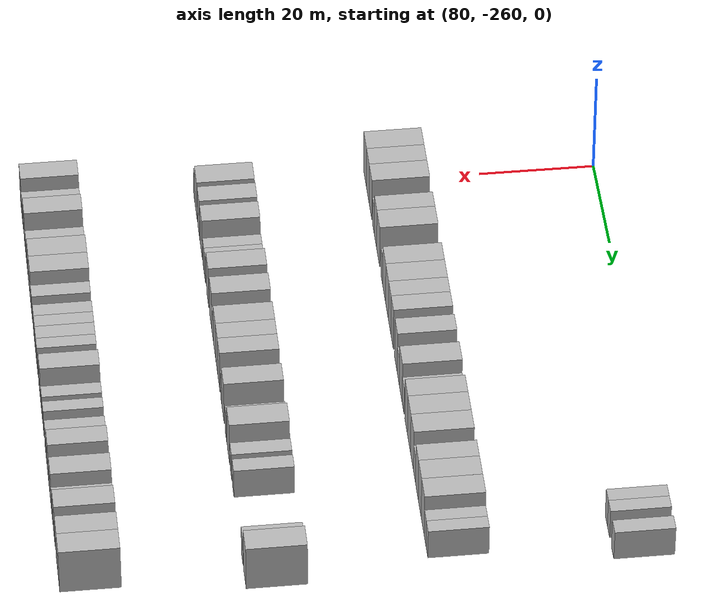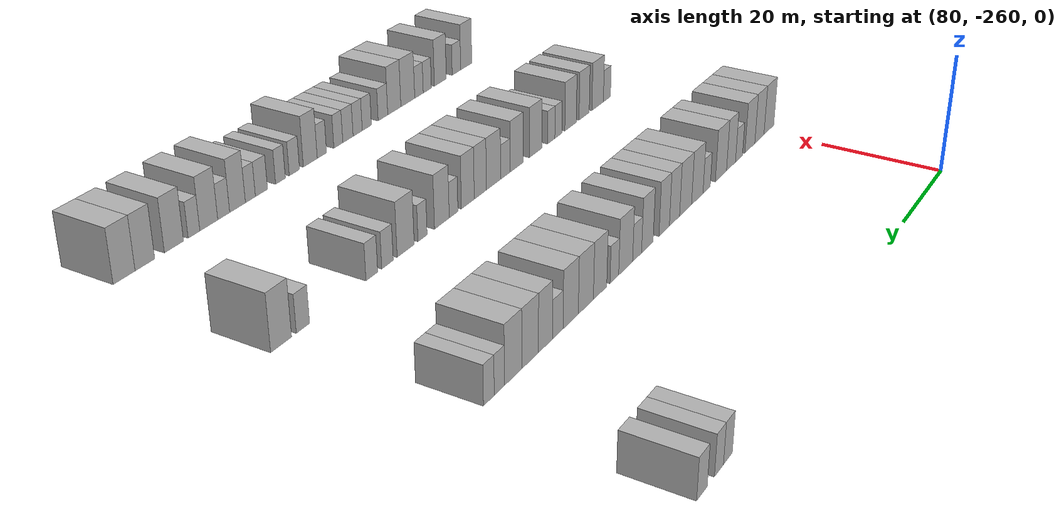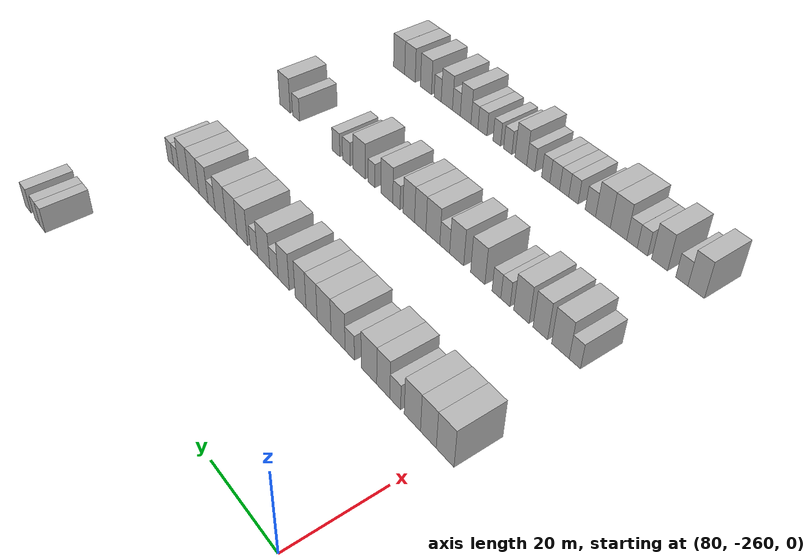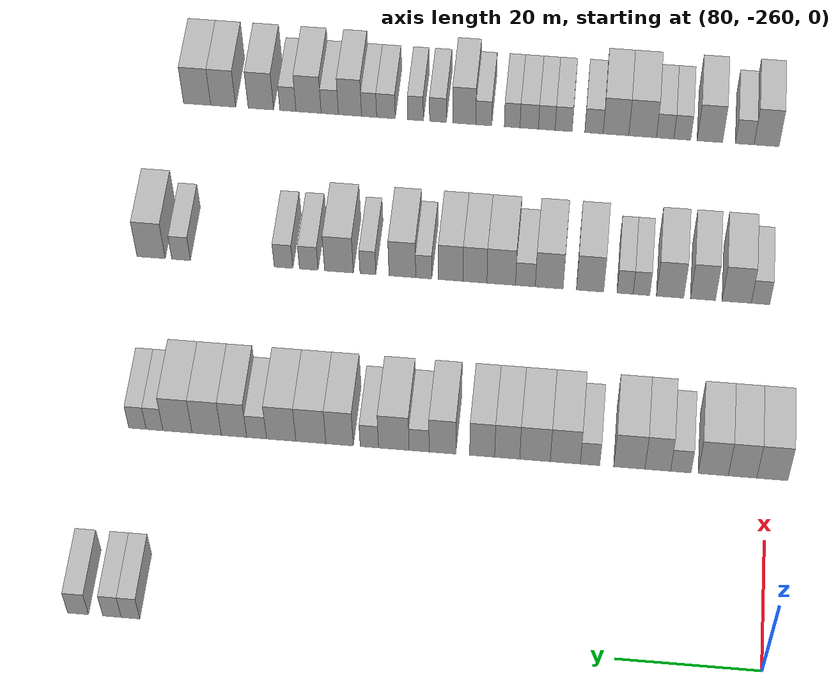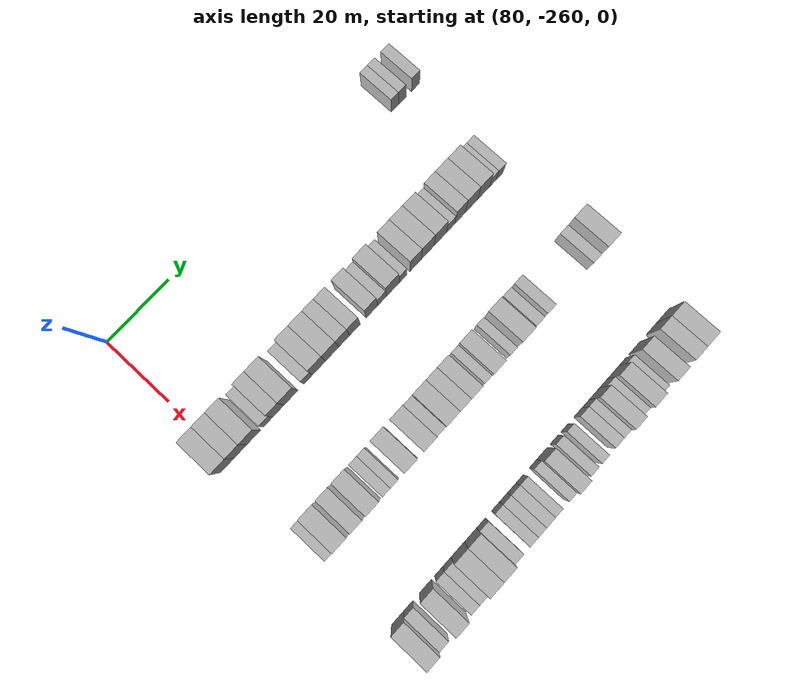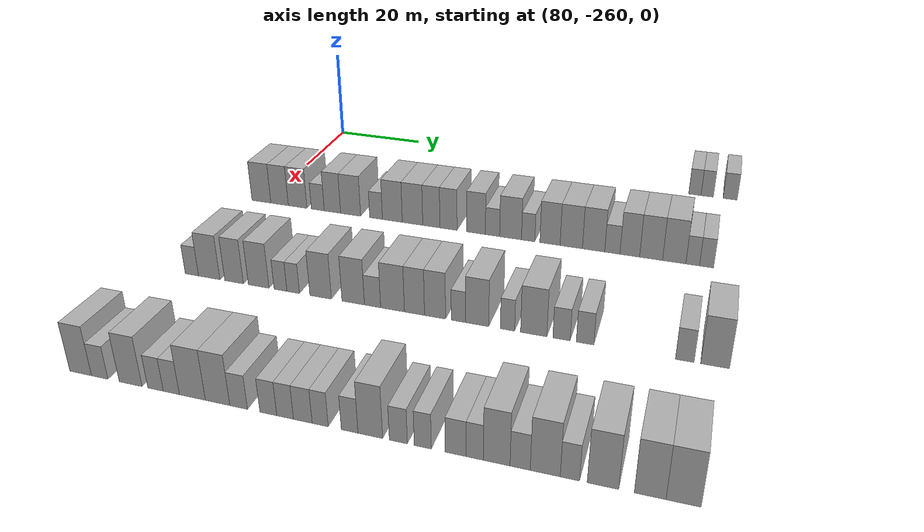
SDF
<sdf version="1.6">
 <world name="default">
  <model name="building_527">
   <static>1</static>
   <pose>85.0000 -173.3232 0 0.000000 0.000000 0.000000</pose>
   <link name="link">
    <pose>0 0 3.00 0 0 0</pose>
    <collision name="collision"><geometry><box><size>10.0000 2.5828 6.0000</size></box></geometry></collision>
    <visual name="visual">
     <cast_shadows>0</cast_shadows>
     <geometry><box><size>10.0000 2.5828 6.0000</size></box></geometry>
     <material>
      <script>
       <uri>model://HANNAS_wall/materials/scripts</uri>
       <uri>model://HANNAS_wall/materials/textures</uri>
       <name>vrc/HANNAS_wall</name>
      </script>
     </material>
    </visual>
   </link>
  </model>
  <model name="building_528">
   <static>1</static>
   <pose>85.0000 -170.7435 0 0.000000 0.000000 0.000000</pose>
   <link name="link">
    <pose>0 0 3.00 0 0 0</pose>
    <collision name="collision"><geometry><box><size>10.0000 2.5765 6.0000</size></box></geometry></collision>
    <visual name="visual">
     <cast_shadows>0</cast_shadows>
     <geometry><box><size>10.0000 2.5765 6.0000</size></box></geometry>
     <material>
      <script>
       <uri>model://HANNAS_wall/materials/scripts</uri>
       <uri>model://HANNAS_wall/materials/textures</uri>
       <name>vrc/HANNAS_wall</name>
      </script>
     </material>
    </visual>
   </link>
  </model>
  <model name="building_529">
   <static>1</static>
   <pose>85.0000 -166.0036 0 0.000000 0.000000 0.000000</pose>
   <link name="link">
    <pose>0 0 3.00 0 0 0</pose>
    <collision name="collision"><geometry><box><size>10.0000 2.9033 6.0000</size></box></geometry></collision>
    <visual name="visual">
     <cast_shadows>0</cast_shadows>
     <geometry><box><size>10.0000 2.9033 6.0000</size></box></geometry>
     <material>
      <script>
       <uri>model://HANNAS_wall/materials/scripts</uri>
       <uri>model://HANNAS_wall/materials/textures</uri>
       <name>vrc/HANNAS_wall</name>
      </script>
     </material>
    </visual>
   </link>
  </model>
  <model name="building_744">
   <static>1</static>
   <pose>115.0000 -260.9342 0 0.000000 0.000000 0.000000</pose>
   <link name="link">
    <pose>0 0 4.50 0 0 0</pose>
    <collision name="collision"><geometry><box><size>10.0000 4.4336 9.0000</size></box></geometry></collision>
    <visual name="visual">
     <cast_shadows>0</cast_shadows>
     <geometry><box><size>10.0000 4.4336 9.0000</size></box></geometry>
     <material>
      <script>
       <uri>model://HANNAS_wall/materials/scripts</uri>
       <uri>model://HANNAS_wall/materials/textures</uri>
       <name>vrc/HANNAS_wall</name>
      </script>
     </material>
    </visual>
   </link>
  </model>
  <model name="building_745">
   <static>1</static>
   <pose>115.0000 -256.6846 0 0.000000 0.000000 0.000000</pose>
   <link name="link">
    <pose>0 0 4.50 0 0 0</pose>
    <collision name="collision"><geometry><box><size>10.0000 4.0654 9.0000</size></box></geometry></collision>
    <visual name="visual">
     <cast_shadows>0</cast_shadows>
     <geometry><box><size>10.0000 4.0654 9.0000</size></box></geometry>
     <material>
      <script>
       <uri>model://HANNAS_wall/materials/scripts</uri>
       <uri>model://HANNAS_wall/materials/textures</uri>
       <name>vrc/HANNAS_wall</name>
      </script>
     </material>
    </visual>
   </link>
  </model>
  <model name="building_746">
   <static>1</static>
   <pose>115.0000 -252.4986 0 0.000000 0.000000 0.000000</pose>
   <link name="link">
    <pose>0 0 4.50 0 0 0</pose>
    <collision name="collision"><geometry><box><size>10.0000 4.3067 9.0000</size></box></geometry></collision>
    <visual name="visual">
     <cast_shadows>0</cast_shadows>
     <geometry><box><size>10.0000 4.3067 9.0000</size></box></geometry>
     <material>
      <script>
       <uri>model://HANNAS_wall/materials/scripts</uri>
       <uri>model://HANNAS_wall/materials/textures</uri>
       <name>vrc/HANNAS_wall</name>
      </script>
     </material>
    </visual>
   </link>
  </model>
  <model name="building_747">
   <static>1</static>
   <pose>115.0000 -247.8755 0 0.000000 0.000000 0.000000</pose>
   <link name="link">
    <pose>0 0 3.00 0 0 0</pose>
    <collision name="collision"><geometry><box><size>10.0000 2.9395 6.0000</size></box></geometry></collision>
    <visual name="visual">
     <cast_shadows>0</cast_shadows>
     <geometry><box><size>10.0000 2.9395 6.0000</size></box></geometry>
     <material>
      <script>
       <uri>model://HANNAS_wall/materials/scripts</uri>
       <uri>model://HANNAS_wall/materials/textures</uri>
       <name>vrc/HANNAS_wall</name>
      </script>
     </material>
    </visual>
   </link>
  </model>
  <model name="building_748">
   <static>1</static>
   <pose>115.0000 -244.5666 0 0.000000 0.000000 0.000000</pose>
   <link name="link">
    <pose>0 0 4.50 0 0 0</pose>
    <collision name="collision"><geometry><box><size>10.0000 3.6782 9.0000</size></box></geometry></collision>
    <visual name="visual">
     <cast_shadows>0</cast_shadows>
     <geometry><box><size>10.0000 3.6782 9.0000</size></box></geometry>
     <material>
      <script>
       <uri>model://HANNAS_wall/materials/scripts</uri>
       <uri>model://HANNAS_wall/materials/textures</uri>
       <name>vrc/HANNAS_wall</name>
      </script>
     </material>
    </visual>
   </link>
  </model>
  <model name="building_749">
   <static>1</static>
   <pose>115.0000 -240.4928 0 0.000000 0.000000 0.000000</pose>
   <link name="link">
    <pose>0 0 4.50 0 0 0</pose>
    <collision name="collision"><geometry><box><size>10.0000 4.4694 9.0000</size></box></geometry></collision>
    <visual name="visual">
     <cast_shadows>0</cast_shadows>
     <geometry><box><size>10.0000 4.4694 9.0000</size></box></geometry>
     <material>
      <script>
       <uri>model://HANNAS_wall/materials/scripts</uri>
       <uri>model://HANNAS_wall/materials/textures</uri>
       <name>vrc/HANNAS_wall</name>
      </script>
     </material>
    </visual>
   </link>
  </model>
  <model name="building_750">
   <static>1</static>
   <pose>115.0000 -234.8564 0 0.000000 0.000000 0.000000</pose>
   <link name="link">
    <pose>0 0 3.00 0 0 0</pose>
    <collision name="collision"><geometry><box><size>10.0000 2.8035 6.0000</size></box></geometry></collision>
    <visual name="visual">
     <cast_shadows>0</cast_shadows>
     <geometry><box><size>10.0000 2.8035 6.0000</size></box></geometry>
     <material>
      <script>
       <uri>model://HANNAS_wall/materials/scripts</uri>
       <uri>model://HANNAS_wall/materials/textures</uri>
       <name>vrc/HANNAS_wall</name>
      </script>
     </material>
    </visual>
   </link>
  </model>
  <model name="building_751">
   <static>1</static>
   <pose>115.0000 -231.3043 0 0.000000 0.000000 0.000000</pose>
   <link name="link">
    <pose>0 0 4.50 0 0 0</pose>
    <collision name="collision"><geometry><box><size>10.0000 4.3008 9.0000</size></box></geometry></collision>
    <visual name="visual">
     <cast_shadows>0</cast_shadows>
     <geometry><box><size>10.0000 4.3008 9.0000</size></box></geometry>
     <material>
      <script>
       <uri>model://HANNAS_wall/materials/scripts</uri>
       <uri>model://HANNAS_wall/materials/textures</uri>
       <name>vrc/HANNAS_wall</name>
      </script>
     </material>
    </visual>
   </link>
  </model>
  <model name="building_752">
   <static>1</static>
   <pose>115.0000 -226.9619 0 0.000000 0.000000 0.000000</pose>
   <link name="link">
    <pose>0 0 4.50 0 0 0</pose>
    <collision name="collision"><geometry><box><size>10.0000 4.3840 9.0000</size></box></geometry></collision>
    <visual name="visual">
     <cast_shadows>0</cast_shadows>
     <geometry><box><size>10.0000 4.3840 9.0000</size></box></geometry>
     <material>
      <script>
       <uri>model://HANNAS_wall/materials/scripts</uri>
       <uri>model://HANNAS_wall/materials/textures</uri>
       <name>vrc/HANNAS_wall</name>
      </script>
     </material>
    </visual>
   </link>
  </model>
  <model name="building_753">
   <static>1</static>
   <pose>115.0000 -222.9598 0 0.000000 0.000000 0.000000</pose>
   <link name="link">
    <pose>0 0 4.50 0 0 0</pose>
    <collision name="collision"><geometry><box><size>10.0000 3.6204 9.0000</size></box></geometry></collision>
    <visual name="visual">
     <cast_shadows>0</cast_shadows>
     <geometry><box><size>10.0000 3.6204 9.0000</size></box></geometry>
     <material>
      <script>
       <uri>model://HANNAS_wall/materials/scripts</uri>
       <uri>model://HANNAS_wall/materials/textures</uri>
       <name>vrc/HANNAS_wall</name>
      </script>
     </material>
    </visual>
   </link>
  </model>
  <model name="building_754">
   <static>1</static>
   <pose>115.0000 -219.3488 0 0.000000 0.000000 0.000000</pose>
   <link name="link">
    <pose>0 0 4.50 0 0 0</pose>
    <collision name="collision"><geometry><box><size>10.0000 3.6015 9.0000</size></box></geometry></collision>
    <visual name="visual">
     <cast_shadows>0</cast_shadows>
     <geometry><box><size>10.0000 3.6015 9.0000</size></box></geometry>
     <material>
      <script>
       <uri>model://HANNAS_wall/materials/scripts</uri>
       <uri>model://HANNAS_wall/materials/textures</uri>
       <name>vrc/HANNAS_wall</name>
      </script>
     </material>
    </visual>
   </link>
  </model>
  <model name="building_755">
   <static>1</static>
   <pose>115.0000 -213.6214 0 0.000000 0.000000 0.000000</pose>
   <link name="link">
    <pose>0 0 4.50 0 0 0</pose>
    <collision name="collision"><geometry><box><size>10.0000 3.8534 9.0000</size></box></geometry></collision>
    <visual name="visual">
     <cast_shadows>0</cast_shadows>
     <geometry><box><size>10.0000 3.8534 9.0000</size></box></geometry>
     <material>
      <script>
       <uri>model://HANNAS_wall/materials/scripts</uri>
       <uri>model://HANNAS_wall/materials/textures</uri>
       <name>vrc/HANNAS_wall</name>
      </script>
     </material>
    </visual>
   </link>
  </model>
  <model name="building_756">
   <static>1</static>
   <pose>115.0000 -210.2442 0 0.000000 0.000000 0.000000</pose>
   <link name="link">
    <pose>0 0 3.00 0 0 0</pose>
    <collision name="collision"><geometry><box><size>10.0000 2.9009 6.0000</size></box></geometry></collision>
    <visual name="visual">
     <cast_shadows>0</cast_shadows>
     <geometry><box><size>10.0000 2.9009 6.0000</size></box></geometry>
     <material>
      <script>
       <uri>model://HANNAS_wall/materials/scripts</uri>
       <uri>model://HANNAS_wall/materials/textures</uri>
       <name>vrc/HANNAS_wall</name>
      </script>
     </material>
    </visual>
   </link>
  </model>
  <model name="building_757">
   <static>1</static>
   <pose>115.0000 -206.5871 0 0.000000 0.000000 0.000000</pose>
   <link name="link">
    <pose>0 0 4.50 0 0 0</pose>
    <collision name="collision"><geometry><box><size>10.0000 4.4133 9.0000</size></box></geometry></collision>
    <visual name="visual">
     <cast_shadows>0</cast_shadows>
     <geometry><box><size>10.0000 4.4133 9.0000</size></box></geometry>
     <material>
      <script>
       <uri>model://HANNAS_wall/materials/scripts</uri>
       <uri>model://HANNAS_wall/materials/textures</uri>
       <name>vrc/HANNAS_wall</name>
      </script>
     </material>
    </visual>
   </link>
  </model>
  <model name="building_758">
   <static>1</static>
   <pose>115.0000 -203.0496 0 0.000000 0.000000 0.000000</pose>
   <link name="link">
    <pose>0 0 3.00 0 0 0</pose>
    <collision name="collision"><geometry><box><size>10.0000 2.6618 6.0000</size></box></geometry></collision>
    <visual name="visual">
     <cast_shadows>0</cast_shadows>
     <geometry><box><size>10.0000 2.6618 6.0000</size></box></geometry>
     <material>
      <script>
       <uri>model://HANNAS_wall/materials/scripts</uri>
       <uri>model://HANNAS_wall/materials/textures</uri>
       <name>vrc/HANNAS_wall</name>
      </script>
     </material>
    </visual>
   </link>
  </model>
  <model name="building_759">
   <static>1</static>
   <pose>115.0000 -198.7320 0 0.000000 0.000000 0.000000</pose>
   <link name="link">
    <pose>0 0 4.50 0 0 0</pose>
    <collision name="collision"><geometry><box><size>10.0000 3.9734 9.0000</size></box></geometry></collision>
    <visual name="visual">
     <cast_shadows>0</cast_shadows>
     <geometry><box><size>10.0000 3.9734 9.0000</size></box></geometry>
     <material>
      <script>
       <uri>model://HANNAS_wall/materials/scripts</uri>
       <uri>model://HANNAS_wall/materials/textures</uri>
       <name>vrc/HANNAS_wall</name>
      </script>
     </material>
    </visual>
   </link>
  </model>
  <model name="building_760">
   <static>1</static>
   <pose>115.0000 -194.5680 0 0.000000 0.000000 0.000000</pose>
   <link name="link">
    <pose>0 0 4.50 0 0 0</pose>
    <collision name="collision"><geometry><box><size>10.0000 4.3548 9.0000</size></box></geometry></collision>
    <visual name="visual">
     <cast_shadows>0</cast_shadows>
     <geometry><box><size>10.0000 4.3548 9.0000</size></box></geometry>
     <material>
      <script>
       <uri>model://HANNAS_wall/materials/scripts</uri>
       <uri>model://HANNAS_wall/materials/textures</uri>
       <name>vrc/HANNAS_wall</name>
      </script>
     </material>
    </visual>
   </link>
  </model>
  <model name="building_761">
   <static>1</static>
   <pose>115.0000 -190.2521 0 0.000000 0.000000 0.000000</pose>
   <link name="link">
    <pose>0 0 4.50 0 0 0</pose>
    <collision name="collision"><geometry><box><size>10.0000 4.2768 9.0000</size></box></geometry></collision>
    <visual name="visual">
     <cast_shadows>0</cast_shadows>
     <geometry><box><size>10.0000 4.2768 9.0000</size></box></geometry>
     <material>
      <script>
       <uri>model://HANNAS_wall/materials/scripts</uri>
       <uri>model://HANNAS_wall/materials/textures</uri>
       <name>vrc/HANNAS_wall</name>
      </script>
     </material>
    </visual>
   </link>
  </model>
  <model name="building_762">
   <static>1</static>
   <pose>115.0000 -186.6690 0 0.000000 0.000000 0.000000</pose>
   <link name="link">
    <pose>0 0 3.00 0 0 0</pose>
    <collision name="collision"><geometry><box><size>10.0000 2.8894 6.0000</size></box></geometry></collision>
    <visual name="visual">
     <cast_shadows>0</cast_shadows>
     <geometry><box><size>10.0000 2.8894 6.0000</size></box></geometry>
     <material>
      <script>
       <uri>model://HANNAS_wall/materials/scripts</uri>
       <uri>model://HANNAS_wall/materials/textures</uri>
       <name>vrc/HANNAS_wall</name>
      </script>
     </material>
    </visual>
   </link>
  </model>
  <model name="building_763">
   <static>1</static>
   <pose>115.0000 -183.3742 0 0.000000 0.000000 0.000000</pose>
   <link name="link">
    <pose>0 0 4.50 0 0 0</pose>
    <collision name="collision"><geometry><box><size>10.0000 3.7001 9.0000</size></box></geometry></collision>
    <visual name="visual">
     <cast_shadows>0</cast_shadows>
     <geometry><box><size>10.0000 3.7001 9.0000</size></box></geometry>
     <material>
      <script>
       <uri>model://HANNAS_wall/materials/scripts</uri>
       <uri>model://HANNAS_wall/materials/textures</uri>
       <name>vrc/HANNAS_wall</name>
      </script>
     </material>
    </visual>
   </link>
  </model>
  <model name="building_764">
   <static>1</static>
   <pose>115.0000 -179.3945 0 0.000000 0.000000 0.000000</pose>
   <link name="link">
    <pose>0 0 4.50 0 0 0</pose>
    <collision name="collision"><geometry><box><size>10.0000 4.2594 9.0000</size></box></geometry></collision>
    <visual name="visual">
     <cast_shadows>0</cast_shadows>
     <geometry><box><size>10.0000 4.2594 9.0000</size></box></geometry>
     <material>
      <script>
       <uri>model://HANNAS_wall/materials/scripts</uri>
       <uri>model://HANNAS_wall/materials/textures</uri>
       <name>vrc/HANNAS_wall</name>
      </script>
     </material>
    </visual>
   </link>
  </model>
  <model name="building_765">
   <static>1</static>
   <pose>115.0000 -175.1311 0 0.000000 0.000000 0.000000</pose>
   <link name="link">
    <pose>0 0 4.50 0 0 0</pose>
    <collision name="collision"><geometry><box><size>10.0000 4.2675 9.0000</size></box></geometry></collision>
    <visual name="visual">
     <cast_shadows>0</cast_shadows>
     <geometry><box><size>10.0000 4.2675 9.0000</size></box></geometry>
     <material>
      <script>
       <uri>model://HANNAS_wall/materials/scripts</uri>
       <uri>model://HANNAS_wall/materials/textures</uri>
       <name>vrc/HANNAS_wall</name>
      </script>
     </material>
    </visual>
   </link>
  </model>
  <model name="building_766">
   <static>1</static>
   <pose>115.0000 -171.7647 0 0.000000 0.000000 0.000000</pose>
   <link name="link">
    <pose>0 0 3.00 0 0 0</pose>
    <collision name="collision"><geometry><box><size>10.0000 2.4652 6.0000</size></box></geometry></collision>
    <visual name="visual">
     <cast_shadows>0</cast_shadows>
     <geometry><box><size>10.0000 2.4652 6.0000</size></box></geometry>
     <material>
      <script>
       <uri>model://HANNAS_wall/materials/scripts</uri>
       <uri>model://HANNAS_wall/materials/textures</uri>
       <name>vrc/HANNAS_wall</name>
      </script>
     </material>
    </visual>
   </link>
  </model>
  <model name="building_767">
   <static>1</static>
   <pose>115.0000 -169.2612 0 0.000000 0.000000 0.000000</pose>
   <link name="link">
    <pose>0 0 3.00 0 0 0</pose>
    <collision name="collision"><geometry><box><size>10.0000 2.5419 6.0000</size></box></geometry></collision>
    <visual name="visual">
     <cast_shadows>0</cast_shadows>
     <geometry><box><size>10.0000 2.5419 6.0000</size></box></geometry>
     <material>
      <script>
       <uri>model://HANNAS_wall/materials/scripts</uri>
       <uri>model://HANNAS_wall/materials/textures</uri>
       <name>vrc/HANNAS_wall</name>
      </script>
     </material>
    </visual>
   </link>
  </model>
  <model name="building_971">
   <static>1</static>
   <pose>145.0000 -258.7184 0 0.000000 0.000000 0.000000</pose>
   <link name="link">
    <pose>0 0 3.00 0 0 0</pose>
    <collision name="collision"><geometry><box><size>10.0000 2.7501 6.0000</size></box></geometry></collision>
    <visual name="visual">
     <cast_shadows>0</cast_shadows>
     <geometry><box><size>10.0000 2.7501 6.0000</size></box></geometry>
     <material>
      <script>
       <uri>model://HANNAS_wall/materials/scripts</uri>
       <uri>model://HANNAS_wall/materials/textures</uri>
       <name>vrc/HANNAS_wall</name>
      </script>
     </material>
    </visual>
   </link>
  </model>
  <model name="building_972">
   <static>1</static>
   <pose>145.0000 -255.1526 0 0.000000 0.000000 0.000000</pose>
   <link name="link">
    <pose>0 0 4.50 0 0 0</pose>
    <collision name="collision"><geometry><box><size>10.0000 4.3815 9.0000</size></box></geometry></collision>
    <visual name="visual">
     <cast_shadows>0</cast_shadows>
     <geometry><box><size>10.0000 4.3815 9.0000</size></box></geometry>
     <material>
      <script>
       <uri>model://HANNAS_wall/materials/scripts</uri>
       <uri>model://HANNAS_wall/materials/textures</uri>
       <name>vrc/HANNAS_wall</name>
      </script>
     </material>
    </visual>
   </link>
  </model>
  <model name="building_973">
   <static>1</static>
   <pose>145.0000 -250.0855 0 0.000000 0.000000 0.000000</pose>
   <link name="link">
    <pose>0 0 4.50 0 0 0</pose>
    <collision name="collision"><geometry><box><size>10.0000 3.7528 9.0000</size></box></geometry></collision>
    <visual name="visual">
     <cast_shadows>0</cast_shadows>
     <geometry><box><size>10.0000 3.7528 9.0000</size></box></geometry>
     <material>
      <script>
       <uri>model://HANNAS_wall/materials/scripts</uri>
       <uri>model://HANNAS_wall/materials/textures</uri>
       <name>vrc/HANNAS_wall</name>
      </script>
     </material>
    </visual>
   </link>
  </model>
  <model name="building_974">
   <static>1</static>
   <pose>145.0000 -245.1570 0 0.000000 0.000000 0.000000</pose>
   <link name="link">
    <pose>0 0 4.50 0 0 0</pose>
    <collision name="collision"><geometry><box><size>10.0000 4.1041 9.0000</size></box></geometry></collision>
    <visual name="visual">
     <cast_shadows>0</cast_shadows>
     <geometry><box><size>10.0000 4.1041 9.0000</size></box></geometry>
     <material>
      <script>
       <uri>model://HANNAS_wall/materials/scripts</uri>
       <uri>model://HANNAS_wall/materials/textures</uri>
       <name>vrc/HANNAS_wall</name>
      </script>
     </material>
    </visual>
   </link>
  </model>
  <model name="building_975">
   <static>1</static>
   <pose>145.0000 -240.8534 0 0.000000 0.000000 0.000000</pose>
   <link name="link">
    <pose>0 0 3.00 0 0 0</pose>
    <collision name="collision"><geometry><box><size>10.0000 2.5031 6.0000</size></box></geometry></collision>
    <visual name="visual">
     <cast_shadows>0</cast_shadows>
     <geometry><box><size>10.0000 2.5031 6.0000</size></box></geometry>
     <material>
      <script>
       <uri>model://HANNAS_wall/materials/scripts</uri>
       <uri>model://HANNAS_wall/materials/textures</uri>
       <name>vrc/HANNAS_wall</name>
      </script>
     </material>
    </visual>
   </link>
  </model>
  <model name="building_976">
   <static>1</static>
   <pose>145.0000 -238.3836 0 0.000000 0.000000 0.000000</pose>
   <link name="link">
    <pose>0 0 3.00 0 0 0</pose>
    <collision name="collision"><geometry><box><size>10.0000 2.4366 6.0000</size></box></geometry></collision>
    <visual name="visual">
     <cast_shadows>0</cast_shadows>
     <geometry><box><size>10.0000 2.4366 6.0000</size></box></geometry>
     <material>
      <script>
       <uri>model://HANNAS_wall/materials/scripts</uri>
       <uri>model://HANNAS_wall/materials/textures</uri>
       <name>vrc/HANNAS_wall</name>
      </script>
     </material>
    </visual>
   </link>
  </model>
  <model name="building_977">
   <static>1</static>
   <pose>145.0000 -233.1106 0 0.000000 0.000000 0.000000</pose>
   <link name="link">
    <pose>0 0 4.50 0 0 0</pose>
    <collision name="collision"><geometry><box><size>10.0000 4.1093 9.0000</size></box></geometry></collision>
    <visual name="visual">
     <cast_shadows>0</cast_shadows>
     <geometry><box><size>10.0000 4.1093 9.0000</size></box></geometry>
     <material>
      <script>
       <uri>model://HANNAS_wall/materials/scripts</uri>
       <uri>model://HANNAS_wall/materials/textures</uri>
       <name>vrc/HANNAS_wall</name>
      </script>
     </material>
    </visual>
   </link>
  </model>
  <model name="building_978">
   <static>1</static>
   <pose>145.0000 -226.9587 0 0.000000 0.000000 0.000000</pose>
   <link name="link">
    <pose>0 0 4.50 0 0 0</pose>
    <collision name="collision"><geometry><box><size>10.0000 4.1946 9.0000</size></box></geometry></collision>
    <visual name="visual">
     <cast_shadows>0</cast_shadows>
     <geometry><box><size>10.0000 4.1946 9.0000</size></box></geometry>
     <material>
      <script>
       <uri>model://HANNAS_wall/materials/scripts</uri>
       <uri>model://HANNAS_wall/materials/textures</uri>
       <name>vrc/HANNAS_wall</name>
      </script>
     </material>
    </visual>
   </link>
  </model>
  <model name="building_979">
   <static>1</static>
   <pose>145.0000 -223.3689 0 0.000000 0.000000 0.000000</pose>
   <link name="link">
    <pose>0 0 3.00 0 0 0</pose>
    <collision name="collision"><geometry><box><size>10.0000 2.9850 6.0000</size></box></geometry></collision>
    <visual name="visual">
     <cast_shadows>0</cast_shadows>
     <geometry><box><size>10.0000 2.9850 6.0000</size></box></geometry>
     <material>
      <script>
       <uri>model://HANNAS_wall/materials/scripts</uri>
       <uri>model://HANNAS_wall/materials/textures</uri>
       <name>vrc/HANNAS_wall</name>
      </script>
     </material>
    </visual>
   </link>
  </model>
  <model name="building_980">
   <static>1</static>
   <pose>145.0000 -219.7098 0 0.000000 0.000000 0.000000</pose>
   <link name="link">
    <pose>0 0 4.50 0 0 0</pose>
    <collision name="collision"><geometry><box><size>10.0000 4.3332 9.0000</size></box></geometry></collision>
    <visual name="visual">
     <cast_shadows>0</cast_shadows>
     <geometry><box><size>10.0000 4.3332 9.0000</size></box></geometry>
     <material>
      <script>
       <uri>model://HANNAS_wall/materials/scripts</uri>
       <uri>model://HANNAS_wall/materials/textures</uri>
       <name>vrc/HANNAS_wall</name>
      </script>
     </material>
    </visual>
   </link>
  </model>
  <model name="building_981">
   <static>1</static>
   <pose>145.0000 -215.7355 0 0.000000 0.000000 0.000000</pose>
   <link name="link">
    <pose>0 0 4.50 0 0 0</pose>
    <collision name="collision"><geometry><box><size>10.0000 3.6153 9.0000</size></box></geometry></collision>
    <visual name="visual">
     <cast_shadows>0</cast_shadows>
     <geometry><box><size>10.0000 3.6153 9.0000</size></box></geometry>
     <material>
      <script>
       <uri>model://HANNAS_wall/materials/scripts</uri>
       <uri>model://HANNAS_wall/materials/textures</uri>
       <name>vrc/HANNAS_wall</name>
      </script>
     </material>
    </visual>
   </link>
  </model>
  <model name="building_982">
   <static>1</static>
   <pose>145.0000 -212.0626 0 0.000000 0.000000 0.000000</pose>
   <link name="link">
    <pose>0 0 4.50 0 0 0</pose>
    <collision name="collision"><geometry><box><size>10.0000 3.7306 9.0000</size></box></geometry></collision>
    <visual name="visual">
     <cast_shadows>0</cast_shadows>
     <geometry><box><size>10.0000 3.7306 9.0000</size></box></geometry>
     <material>
      <script>
       <uri>model://HANNAS_wall/materials/scripts</uri>
       <uri>model://HANNAS_wall/materials/textures</uri>
       <name>vrc/HANNAS_wall</name>
      </script>
     </material>
    </visual>
   </link>
  </model>
  <model name="building_983">
   <static>1</static>
   <pose>145.0000 -207.9776 0 0.000000 0.000000 0.000000</pose>
   <link name="link">
    <pose>0 0 3.00 0 0 0</pose>
    <collision name="collision"><geometry><box><size>10.0000 2.4393 6.0000</size></box></geometry></collision>
    <visual name="visual">
     <cast_shadows>0</cast_shadows>
     <geometry><box><size>10.0000 2.4393 6.0000</size></box></geometry>
     <material>
      <script>
       <uri>model://HANNAS_wall/materials/scripts</uri>
       <uri>model://HANNAS_wall/materials/textures</uri>
       <name>vrc/HANNAS_wall</name>
      </script>
     </material>
    </visual>
   </link>
  </model>
  <model name="building_984">
   <static>1</static>
   <pose>145.0000 -204.7273 0 0.000000 0.000000 0.000000</pose>
   <link name="link">
    <pose>0 0 4.50 0 0 0</pose>
    <collision name="collision"><geometry><box><size>10.0000 4.0614 9.0000</size></box></geometry></collision>
    <visual name="visual">
     <cast_shadows>0</cast_shadows>
     <geometry><box><size>10.0000 4.0614 9.0000</size></box></geometry>
     <material>
      <script>
       <uri>model://HANNAS_wall/materials/scripts</uri>
       <uri>model://HANNAS_wall/materials/textures</uri>
       <name>vrc/HANNAS_wall</name>
      </script>
     </material>
    </visual>
   </link>
  </model>
  <model name="building_985">
   <static>1</static>
   <pose>145.0000 -199.4875 0 0.000000 0.000000 0.000000</pose>
   <link name="link">
    <pose>0 0 3.00 0 0 0</pose>
    <collision name="collision"><geometry><box><size>10.0000 2.4181 6.0000</size></box></geometry></collision>
    <visual name="visual">
     <cast_shadows>0</cast_shadows>
     <geometry><box><size>10.0000 2.4181 6.0000</size></box></geometry>
     <material>
      <script>
       <uri>model://HANNAS_wall/materials/scripts</uri>
       <uri>model://HANNAS_wall/materials/textures</uri>
       <name>vrc/HANNAS_wall</name>
      </script>
     </material>
    </visual>
   </link>
  </model>
  <model name="building_986">
   <static>1</static>
   <pose>145.0000 -195.0866 0 0.000000 0.000000 0.000000</pose>
   <link name="link">
    <pose>0 0 4.50 0 0 0</pose>
    <collision name="collision"><geometry><box><size>10.0000 4.3838 9.0000</size></box></geometry></collision>
    <visual name="visual">
     <cast_shadows>0</cast_shadows>
     <geometry><box><size>10.0000 4.3838 9.0000</size></box></geometry>
     <material>
      <script>
       <uri>model://HANNAS_wall/materials/scripts</uri>
       <uri>model://HANNAS_wall/materials/textures</uri>
       <name>vrc/HANNAS_wall</name>
      </script>
     </material>
    </visual>
   </link>
  </model>
  <model name="building_987">
   <static>1</static>
   <pose>145.0000 -190.4738 0 0.000000 0.000000 0.000000</pose>
   <link name="link">
    <pose>0 0 3.00 0 0 0</pose>
    <collision name="collision"><geometry><box><size>10.0000 2.8418 6.0000</size></box></geometry></collision>
    <visual name="visual">
     <cast_shadows>0</cast_shadows>
     <geometry><box><size>10.0000 2.8418 6.0000</size></box></geometry>
     <material>
      <script>
       <uri>model://HANNAS_wall/materials/scripts</uri>
       <uri>model://HANNAS_wall/materials/textures</uri>
       <name>vrc/HANNAS_wall</name>
      </script>
     </material>
    </visual>
   </link>
  </model>
  <model name="building_988">
   <static>1</static>
   <pose>145.0000 -186.6332 0 0.000000 0.000000 0.000000</pose>
   <link name="link">
    <pose>0 0 3.00 0 0 0</pose>
    <collision name="collision"><geometry><box><size>10.0000 2.8393 6.0000</size></box></geometry></collision>
    <visual name="visual">
     <cast_shadows>0</cast_shadows>
     <geometry><box><size>10.0000 2.8393 6.0000</size></box></geometry>
     <material>
      <script>
       <uri>model://HANNAS_wall/materials/scripts</uri>
       <uri>model://HANNAS_wall/materials/textures</uri>
       <name>vrc/HANNAS_wall</name>
      </script>
     </material>
    </visual>
   </link>
  </model>
  <model name="building_989">
   <static>1</static>
   <pose>145.0000 -170.9373 0 0.000000 0.000000 0.000000</pose>
   <link name="link">
    <pose>0 0 3.00 0 0 0</pose>
    <collision name="collision"><geometry><box><size>10.0000 2.8509 6.0000</size></box></geometry></collision>
    <visual name="visual">
     <cast_shadows>0</cast_shadows>
     <geometry><box><size>10.0000 2.8509 6.0000</size></box></geometry>
     <material>
      <script>
       <uri>model://HANNAS_wall/materials/scripts</uri>
       <uri>model://HANNAS_wall/materials/textures</uri>
       <name>vrc/HANNAS_wall</name>
      </script>
     </material>
    </visual>
   </link>
  </model>
  <model name="building_990">
   <static>1</static>
   <pose>145.0000 -166.3443 0 0.000000 0.000000 0.000000</pose>
   <link name="link">
    <pose>0 0 4.50 0 0 0</pose>
    <collision name="collision"><geometry><box><size>10.0000 4.3349 9.0000</size></box></geometry></collision>
    <visual name="visual">
     <cast_shadows>0</cast_shadows>
     <geometry><box><size>10.0000 4.3349 9.0000</size></box></geometry>
     <material>
      <script>
       <uri>model://HANNAS_wall/materials/scripts</uri>
       <uri>model://HANNAS_wall/materials/textures</uri>
       <name>vrc/HANNAS_wall</name>
      </script>
     </material>
    </visual>
   </link>
  </model>
  <model name="building_1200">
   <static>1</static>
   <pose>175.0000 -259.1212 0 0.000000 0.000000 0.000000</pose>
   <link name="link">
    <pose>0 0 4.50 0 0 0</pose>
    <collision name="collision"><geometry><box><size>10.0000 3.9138 9.0000</size></box></geometry></collision>
    <visual name="visual">
     <cast_shadows>0</cast_shadows>
     <geometry><box><size>10.0000 3.9138 9.0000</size></box></geometry>
     <material>
      <script>
       <uri>model://HANNAS_wall/materials/scripts</uri>
       <uri>model://HANNAS_wall/materials/textures</uri>
       <name>vrc/HANNAS_wall</name>
      </script>
     </material>
    </visual>
   </link>
  </model>
  <model name="building_1201">
   <static>1</static>
   <pose>175.0000 -255.6952 0 0.000000 0.000000 0.000000</pose>
   <link name="link">
    <pose>0 0 3.00 0 0 0</pose>
    <collision name="collision"><geometry><box><size>10.0000 2.9383 6.0000</size></box></geometry></collision>
    <visual name="visual">
     <cast_shadows>0</cast_shadows>
     <geometry><box><size>10.0000 2.9383 6.0000</size></box></geometry>
     <material>
      <script>
       <uri>model://HANNAS_wall/materials/scripts</uri>
       <uri>model://HANNAS_wall/materials/textures</uri>
       <name>vrc/HANNAS_wall</name>
      </script>
     </material>
    </visual>
   </link>
  </model>
  <model name="building_1202">
   <static>1</static>
   <pose>175.0000 -250.2261 0 0.000000 0.000000 0.000000</pose>
   <link name="link">
    <pose>0 0 4.50 0 0 0</pose>
    <collision name="collision"><geometry><box><size>10.0000 3.9999 9.0000</size></box></geometry></collision>
    <visual name="visual">
     <cast_shadows>0</cast_shadows>
     <geometry><box><size>10.0000 3.9999 9.0000</size></box></geometry>
     <material>
      <script>
       <uri>model://HANNAS_wall/materials/scripts</uri>
       <uri>model://HANNAS_wall/materials/textures</uri>
       <name>vrc/HANNAS_wall</name>
      </script>
     </material>
    </visual>
   </link>
  </model>
  <model name="building_1203">
   <static>1</static>
   <pose>175.0000 -245.8970 0 0.000000 0.000000 0.000000</pose>
   <link name="link">
    <pose>0 0 3.00 0 0 0</pose>
    <collision name="collision"><geometry><box><size>10.0000 2.6583 6.0000</size></box></geometry></collision>
    <visual name="visual">
     <cast_shadows>0</cast_shadows>
     <geometry><box><size>10.0000 2.6583 6.0000</size></box></geometry>
     <material>
      <script>
       <uri>model://HANNAS_wall/materials/scripts</uri>
       <uri>model://HANNAS_wall/materials/textures</uri>
       <name>vrc/HANNAS_wall</name>
      </script>
     </material>
    </visual>
   </link>
  </model>
  <model name="building_1204">
   <static>1</static>
   <pose>175.0000 -243.1952 0 0.000000 0.000000 0.000000</pose>
   <link name="link">
    <pose>0 0 3.00 0 0 0</pose>
    <collision name="collision"><geometry><box><size>10.0000 2.7452 6.0000</size></box></geometry></collision>
    <visual name="visual">
     <cast_shadows>0</cast_shadows>
     <geometry><box><size>10.0000 2.7452 6.0000</size></box></geometry>
     <material>
      <script>
       <uri>model://HANNAS_wall/materials/scripts</uri>
       <uri>model://HANNAS_wall/materials/textures</uri>
       <name>vrc/HANNAS_wall</name>
      </script>
     </material>
    </visual>
   </link>
  </model>
  <model name="building_1205">
   <static>1</static>
   <pose>175.0000 -239.6393 0 0.000000 0.000000 0.000000</pose>
   <link name="link">
    <pose>0 0 4.50 0 0 0</pose>
    <collision name="collision"><geometry><box><size>10.0000 4.3666 9.0000</size></box></geometry></collision>
    <visual name="visual">
     <cast_shadows>0</cast_shadows>
     <geometry><box><size>10.0000 4.3666 9.0000</size></box></geometry>
     <material>
      <script>
       <uri>model://HANNAS_wall/materials/scripts</uri>
       <uri>model://HANNAS_wall/materials/textures</uri>
       <name>vrc/HANNAS_wall</name>
      </script>
     </material>
    </visual>
   </link>
  </model>
  <model name="building_1206">
   <static>1</static>
   <pose>175.0000 -235.4363 0 0.000000 0.000000 0.000000</pose>
   <link name="link">
    <pose>0 0 4.50 0 0 0</pose>
    <collision name="collision"><geometry><box><size>10.0000 4.0394 9.0000</size></box></geometry></collision>
    <visual name="visual">
     <cast_shadows>0</cast_shadows>
     <geometry><box><size>10.0000 4.0394 9.0000</size></box></geometry>
     <material>
      <script>
       <uri>model://HANNAS_wall/materials/scripts</uri>
       <uri>model://HANNAS_wall/materials/textures</uri>
       <name>vrc/HANNAS_wall</name>
      </script>
     </material>
    </visual>
   </link>
  </model>
  <model name="building_1207">
   <static>1</static>
   <pose>175.0000 -231.9770 0 0.000000 0.000000 0.000000</pose>
   <link name="link">
    <pose>0 0 3.00 0 0 0</pose>
    <collision name="collision"><geometry><box><size>10.0000 2.8792 6.0000</size></box></geometry></collision>
    <visual name="visual">
     <cast_shadows>0</cast_shadows>
     <geometry><box><size>10.0000 2.8792 6.0000</size></box></geometry>
     <material>
      <script>
       <uri>model://HANNAS_wall/materials/scripts</uri>
       <uri>model://HANNAS_wall/materials/textures</uri>
       <name>vrc/HANNAS_wall</name>
      </script>
     </material>
    </visual>
   </link>
  </model>
  <model name="building_1208">
   <static>1</static>
   <pose>175.0000 -227.1927 0 0.000000 0.000000 0.000000</pose>
   <link name="link">
    <pose>0 0 3.00 0 0 0</pose>
    <collision name="collision"><geometry><box><size>10.0000 2.6892 6.0000</size></box></geometry></collision>
    <visual name="visual">
     <cast_shadows>0</cast_shadows>
     <geometry><box><size>10.0000 2.6892 6.0000</size></box></geometry>
     <material>
      <script>
       <uri>model://HANNAS_wall/materials/scripts</uri>
       <uri>model://HANNAS_wall/materials/textures</uri>
       <name>vrc/HANNAS_wall</name>
      </script>
     </material>
    </visual>
   </link>
  </model>
  <model name="building_1209">
   <static>1</static>
   <pose>175.0000 -224.5306 0 0.000000 0.000000 0.000000</pose>
   <link name="link">
    <pose>0 0 3.00 0 0 0</pose>
    <collision name="collision"><geometry><box><size>10.0000 2.6351 6.0000</size></box></geometry></collision>
    <visual name="visual">
     <cast_shadows>0</cast_shadows>
     <geometry><box><size>10.0000 2.6351 6.0000</size></box></geometry>
     <material>
      <script>
       <uri>model://HANNAS_wall/materials/scripts</uri>
       <uri>model://HANNAS_wall/materials/textures</uri>
       <name>vrc/HANNAS_wall</name>
      </script>
     </material>
    </visual>
   </link>
  </model>
  <model name="building_1210">
   <static>1</static>
   <pose>175.0000 -221.7559 0 0.000000 0.000000 0.000000</pose>
   <link name="link">
    <pose>0 0 3.00 0 0 0</pose>
    <collision name="collision"><geometry><box><size>10.0000 2.9142 6.0000</size></box></geometry></collision>
    <visual name="visual">
     <cast_shadows>0</cast_shadows>
     <geometry><box><size>10.0000 2.9142 6.0000</size></box></geometry>
     <material>
      <script>
       <uri>model://HANNAS_wall/materials/scripts</uri>
       <uri>model://HANNAS_wall/materials/textures</uri>
       <name>vrc/HANNAS_wall</name>
      </script>
     </material>
    </visual>
   </link>
  </model>
  <model name="building_1211">
   <static>1</static>
   <pose>175.0000 -219.0538 0 0.000000 0.000000 0.000000</pose>
   <link name="link">
    <pose>0 0 3.00 0 0 0</pose>
    <collision name="collision"><geometry><box><size>10.0000 2.4900 6.0000</size></box></geometry></collision>
    <visual name="visual">
     <cast_shadows>0</cast_shadows>
     <geometry><box><size>10.0000 2.4900 6.0000</size></box></geometry>
     <material>
      <script>
       <uri>model://HANNAS_wall/materials/scripts</uri>
       <uri>model://HANNAS_wall/materials/textures</uri>
       <name>vrc/HANNAS_wall</name>
      </script>
     </material>
    </visual>
   </link>
  </model>
  <model name="building_1212">
   <static>1</static>
   <pose>175.0000 -214.5501 0 0.000000 0.000000 0.000000</pose>
   <link name="link">
    <pose>0 0 3.00 0 0 0</pose>
    <collision name="collision"><geometry><box><size>10.0000 2.5174 6.0000</size></box></geometry></collision>
    <visual name="visual">
     <cast_shadows>0</cast_shadows>
     <geometry><box><size>10.0000 2.5174 6.0000</size></box></geometry>
     <material>
      <script>
       <uri>model://HANNAS_wall/materials/scripts</uri>
       <uri>model://HANNAS_wall/materials/textures</uri>
       <name>vrc/HANNAS_wall</name>
      </script>
     </material>
    </visual>
   </link>
  </model>
  <model name="building_1213">
   <static>1</static>
   <pose>175.0000 -211.4468 0 0.000000 0.000000 0.000000</pose>
   <link name="link">
    <pose>0 0 4.50 0 0 0</pose>
    <collision name="collision"><geometry><box><size>10.0000 3.6892 9.0000</size></box></geometry></collision>
    <visual name="visual">
     <cast_shadows>0</cast_shadows>
     <geometry><box><size>10.0000 3.6892 9.0000</size></box></geometry>
     <material>
      <script>
       <uri>model://HANNAS_wall/materials/scripts</uri>
       <uri>model://HANNAS_wall/materials/textures</uri>
       <name>vrc/HANNAS_wall</name>
      </script>
     </material>
    </visual>
   </link>
  </model>
  <model name="building_1214">
   <static>1</static>
   <pose>175.0000 -207.2800 0 0.000000 0.000000 0.000000</pose>
   <link name="link">
    <pose>0 0 3.00 0 0 0</pose>
    <collision name="collision"><geometry><box><size>10.0000 2.6446 6.0000</size></box></geometry></collision>
    <visual name="visual">
     <cast_shadows>0</cast_shadows>
     <geometry><box><size>10.0000 2.6446 6.0000</size></box></geometry>
     <material>
      <script>
       <uri>model://HANNAS_wall/materials/scripts</uri>
       <uri>model://HANNAS_wall/materials/textures</uri>
       <name>vrc/HANNAS_wall</name>
      </script>
     </material>
    </visual>
   </link>
  </model>
  <model name="building_1215">
   <static>1</static>
   <pose>175.0000 -203.7226 0 0.000000 0.000000 0.000000</pose>
   <link name="link">
    <pose>0 0 3.00 0 0 0</pose>
    <collision name="collision"><geometry><box><size>10.0000 2.4702 6.0000</size></box></geometry></collision>
    <visual name="visual">
     <cast_shadows>0</cast_shadows>
     <geometry><box><size>10.0000 2.4702 6.0000</size></box></geometry>
     <material>
      <script>
       <uri>model://HANNAS_wall/materials/scripts</uri>
       <uri>model://HANNAS_wall/materials/textures</uri>
       <name>vrc/HANNAS_wall</name>
      </script>
     </material>
    </visual>
   </link>
  </model>
  <model name="building_1216">
   <static>1</static>
   <pose>175.0000 -199.0086 0 0.000000 0.000000 0.000000</pose>
   <link name="link">
    <pose>0 0 3.00 0 0 0</pose>
    <collision name="collision"><geometry><box><size>10.0000 2.9577 6.0000</size></box></geometry></collision>
    <visual name="visual">
     <cast_shadows>0</cast_shadows>
     <geometry><box><size>10.0000 2.9577 6.0000</size></box></geometry>
     <material>
      <script>
       <uri>model://HANNAS_wall/materials/scripts</uri>
       <uri>model://HANNAS_wall/materials/textures</uri>
       <name>vrc/HANNAS_wall</name>
      </script>
     </material>
    </visual>
   </link>
  </model>
  <model name="building_1217">
   <static>1</static>
   <pose>175.0000 -196.3279 0 0.000000 0.000000 0.000000</pose>
   <link name="link">
    <pose>0 0 3.00 0 0 0</pose>
    <collision name="collision"><geometry><box><size>10.0000 2.4038 6.0000</size></box></geometry></collision>
    <visual name="visual">
     <cast_shadows>0</cast_shadows>
     <geometry><box><size>10.0000 2.4038 6.0000</size></box></geometry>
     <material>
      <script>
       <uri>model://HANNAS_wall/materials/scripts</uri>
       <uri>model://HANNAS_wall/materials/textures</uri>
       <name>vrc/HANNAS_wall</name>
      </script>
     </material>
    </visual>
   </link>
  </model>
  <model name="building_1218">
   <static>1</static>
   <pose>175.0000 -193.2791 0 0.000000 0.000000 0.000000</pose>
   <link name="link">
    <pose>0 0 4.50 0 0 0</pose>
    <collision name="collision"><geometry><box><size>10.0000 3.6939 9.0000</size></box></geometry></collision>
    <visual name="visual">
     <cast_shadows>0</cast_shadows>
     <geometry><box><size>10.0000 3.6939 9.0000</size></box></geometry>
     <material>
      <script>
       <uri>model://HANNAS_wall/materials/scripts</uri>
       <uri>model://HANNAS_wall/materials/textures</uri>
       <name>vrc/HANNAS_wall</name>
      </script>
     </material>
    </visual>
   </link>
  </model>
  <model name="building_1219">
   <static>1</static>
   <pose>175.0000 -190.0588 0 0.000000 0.000000 0.000000</pose>
   <link name="link">
    <pose>0 0 3.00 0 0 0</pose>
    <collision name="collision"><geometry><box><size>10.0000 2.7466 6.0000</size></box></geometry></collision>
    <visual name="visual">
     <cast_shadows>0</cast_shadows>
     <geometry><box><size>10.0000 2.7466 6.0000</size></box></geometry>
     <material>
      <script>
       <uri>model://HANNAS_wall/materials/scripts</uri>
       <uri>model://HANNAS_wall/materials/textures</uri>
       <name>vrc/HANNAS_wall</name>
      </script>
     </material>
    </visual>
   </link>
  </model>
  <model name="building_1220">
   <static>1</static>
   <pose>175.0000 -186.6703 0 0.000000 0.000000 0.000000</pose>
   <link name="link">
    <pose>0 0 4.50 0 0 0</pose>
    <collision name="collision"><geometry><box><size>10.0000 4.0304 9.0000</size></box></geometry></collision>
    <visual name="visual">
     <cast_shadows>0</cast_shadows>
     <geometry><box><size>10.0000 4.0304 9.0000</size></box></geometry>
     <material>
      <script>
       <uri>model://HANNAS_wall/materials/scripts</uri>
       <uri>model://HANNAS_wall/materials/textures</uri>
       <name>vrc/HANNAS_wall</name>
      </script>
     </material>
    </visual>
   </link>
  </model>
  <model name="building_1221">
   <static>1</static>
   <pose>175.0000 -183.3727 0 0.000000 0.000000 0.000000</pose>
   <link name="link">
    <pose>0 0 3.00 0 0 0</pose>
    <collision name="collision"><geometry><box><size>10.0000 2.5648 6.0000</size></box></geometry></collision>
    <visual name="visual">
     <cast_shadows>0</cast_shadows>
     <geometry><box><size>10.0000 2.5648 6.0000</size></box></geometry>
     <material>
      <script>
       <uri>model://HANNAS_wall/materials/scripts</uri>
       <uri>model://HANNAS_wall/materials/textures</uri>
       <name>vrc/HANNAS_wall</name>
      </script>
     </material>
    </visual>
   </link>
  </model>
  <model name="building_1222">
   <static>1</static>
   <pose>175.0000 -179.0494 0 0.000000 0.000000 0.000000</pose>
   <link name="link">
    <pose>0 0 4.50 0 0 0</pose>
    <collision name="collision"><geometry><box><size>10.0000 4.0817 9.0000</size></box></geometry></collision>
    <visual name="visual">
     <cast_shadows>0</cast_shadows>
     <geometry><box><size>10.0000 4.0817 9.0000</size></box></geometry>
     <material>
      <script>
       <uri>model://HANNAS_wall/materials/scripts</uri>
       <uri>model://HANNAS_wall/materials/textures</uri>
       <name>vrc/HANNAS_wall</name>
      </script>
     </material>
    </visual>
   </link>
  </model>
  <model name="building_1223">
   <static>1</static>
   <pose>175.0000 -173.0054 0 0.000000 0.000000 0.000000</pose>
   <link name="link">
    <pose>0 0 4.50 0 0 0</pose>
    <collision name="collision"><geometry><box><size>10.0000 4.0064 9.0000</size></box></geometry></collision>
    <visual name="visual">
     <cast_shadows>0</cast_shadows>
     <geometry><box><size>10.0000 4.0064 9.0000</size></box></geometry>
     <material>
      <script>
       <uri>model://HANNAS_wall/materials/scripts</uri>
       <uri>model://HANNAS_wall/materials/textures</uri>
       <name>vrc/HANNAS_wall</name>
      </script>
     </material>
    </visual>
   </link>
  </model>
  <model name="building_1224">
   <static>1</static>
   <pose>175.0000 -168.8231 0 0.000000 0.000000 0.000000</pose>
   <link name="link">
    <pose>0 0 4.50 0 0 0</pose>
    <collision name="collision"><geometry><box><size>10.0000 4.3580 9.0000</size></box></geometry></collision>
    <visual name="visual">
     <cast_shadows>0</cast_shadows>
     <geometry><box><size>10.0000 4.3580 9.0000</size></box></geometry>
     <material>
      <script>
       <uri>model://HANNAS_wall/materials/scripts</uri>
       <uri>model://HANNAS_wall/materials/textures</uri>
       <name>vrc/HANNAS_wall</name>
      </script>
     </material>
    </visual>
   </link>
  </model>
 </world>
</sdf>
